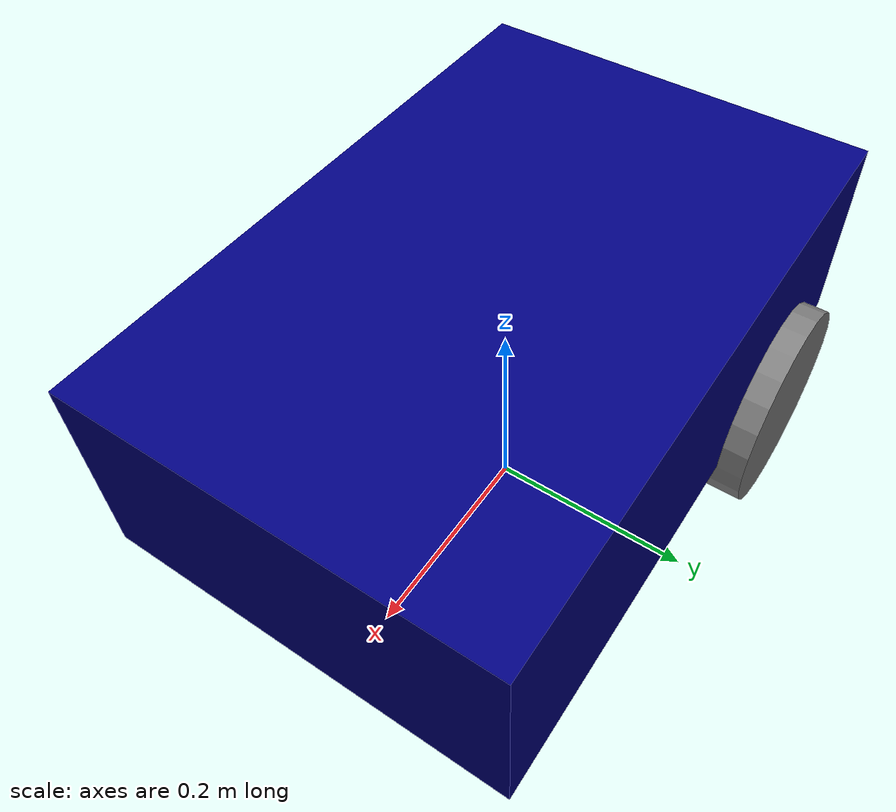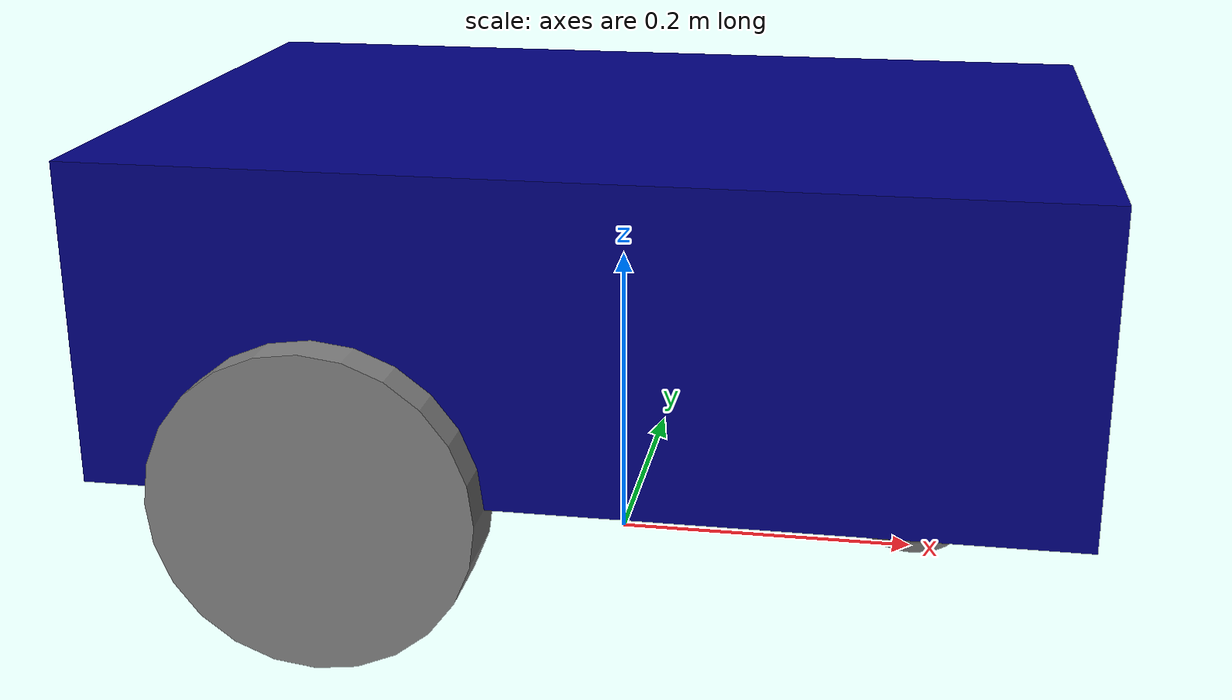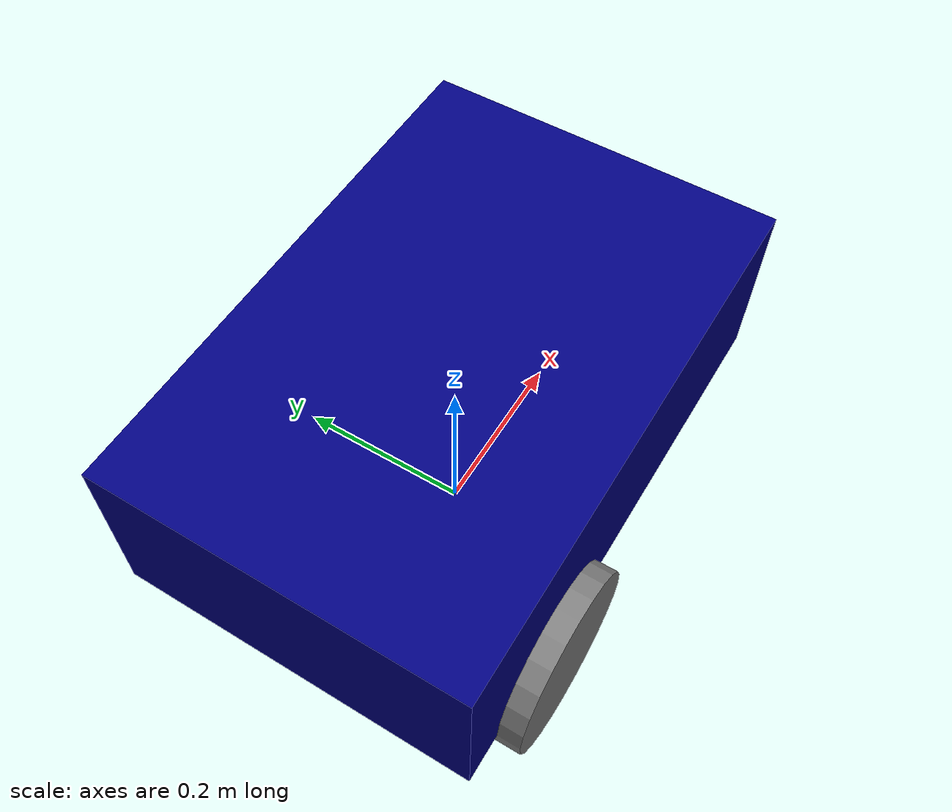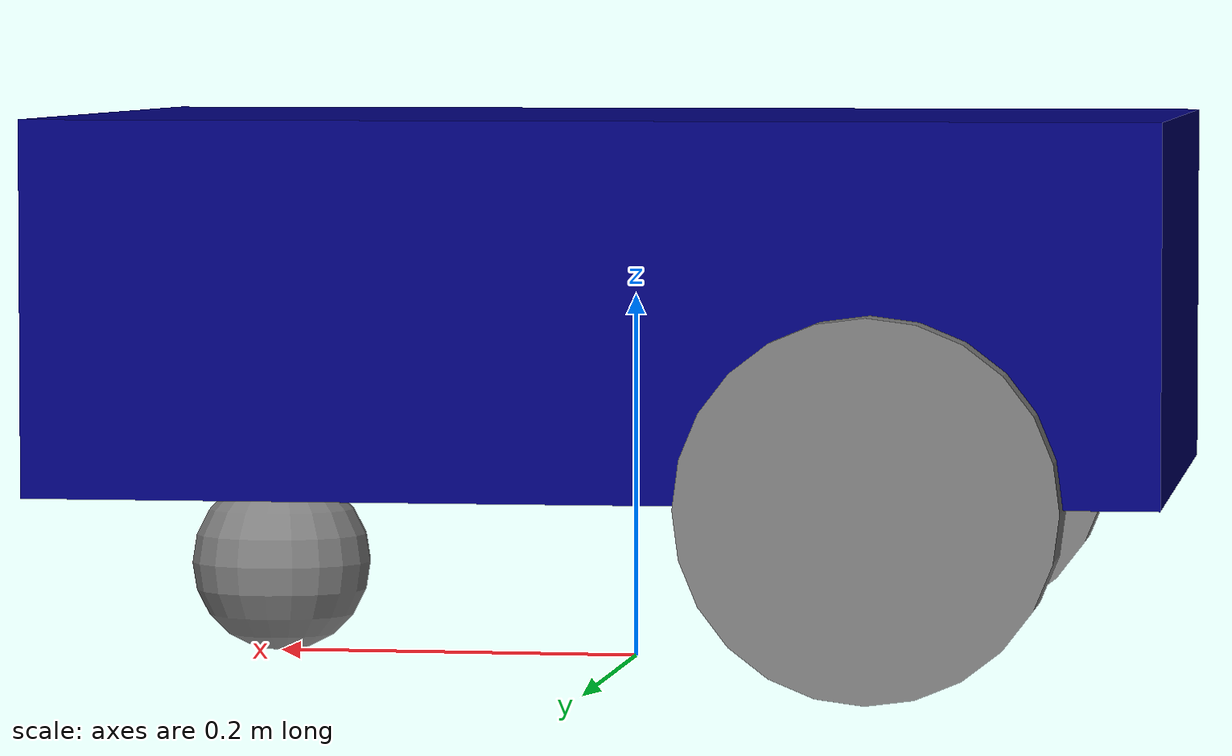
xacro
<?xml version="1.0"?>
<robot name="robot" xmlns:xacro="http://www.ros.org/wiki/xacro">
    <!--Defines a material that can be used to color a geometry-->

    <xacro:include filename="common_properties.xacro"/>

    <xacro:include filename="mobile_base.xacro"/>

    <xacro:include filename="mobile_base_gazebo.xacro" />

</robot>

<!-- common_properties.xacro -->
<robot xmlns:xacro="http://www.ros.org/wiki/xacro">

    <material name="blue">
        <color rgba="0 0 0.5 1" />
    </material>

    <material name="grey">
        <color rgba="0.5 0.5 0.5 1" />
    </material>

    <material name="red">
        <color rgba="0.5 0 0 1" />
    </material>

    <xacro:macro name="box_inertia" params="m l w h xyz rpy">
        <inertial>
            <origin xyz="${xyz}" rpy="${rpy}" />
            <mass value="${m}" />
            <inertia ixx="${(m/12) * (h*h + l*l)}" ixy="0" ixz="0"
                     iyy="${(m/12) * (w*w + l*l)}" iyz="0"
                     izz="${(m/12) * (w*w + h*h)}" />
        </inertial>
    </xacro:macro>

    <xacro:macro name="cylinder_inertia" params="m r h xyz rpy">
        <inertial>
            <origin xyz="${xyz}" rpy="${rpy}" />
            <mass value="${m}" />
            <inertia ixx="${(m/12) * (3*r*r + h*h)}" ixy="0" ixz="0"
                     iyy="${(m/12) * (3*r*r + h*h)}" iyz="0"
                     izz="${(m/2) * (r*r)}" />
        </inertial>
    </xacro:macro>

    <xacro:macro name="sphere_inertia" params="m r xyz rpy">
        <inertial>
            <origin xyz="${xyz}" rpy="${rpy}" />
            <mass value="${m}" />
            <inertia ixx="${(2/5) * m * r * r}" ixy="0" ixz="0"
                     iyy="${(2/5) * m * r * r}" iyz="0"
                     izz="${(2/5) * m * r * r}" />
        </inertial>
    </xacro:macro>

</robot>

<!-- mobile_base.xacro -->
<robot xmlns:xacro="http://www.ros.org/wiki/xacro">

    <xacro:property name="base_lenght" value="0.6"/>
    <xacro:property name="base_width" value="0.4"/>
    <xacro:property name="base_height" value="0.2"/>
    <xacro:property name="wheel_radius" value="0.1"/>
    <xacro:property name="wheel_length" value="0.05"/>

    <xacro:macro name="wheel_link" params="prefix">
        <link name="${prefix}_wheel_link">
            <visual>
                <origin xyz="0 0 0" rpy="${pi/2.0} 0 0"/>
                <geometry>
                    <cylinder radius="${wheel_radius}" length="${wheel_length}"/> <!-- in meters |  20cm radius | 20cm height -->
                </geometry>
                <material name="grey"/>
            </visual>
            <collision>
                <origin xyz="0 0 0" rpy="${pi/2.0} 0 0"/>
                <geometry>
                    <cylinder radius="${wheel_radius}" length="${wheel_length}"/> <!-- in meters |  20cm radius | 20cm height -->
                </geometry>
            </collision>
            <xacro:cylinder_inertia mass="1" radius="${wheel_radius}" height="${wheel_length}" xyz_origin="0 0 0" rpy_orgin="0 0 0"/>
        </link>
    </xacro:macro>

    <xacro:wheel_link prefix="right"/>
    <xacro:wheel_link prefix="left"/>

    <link name="base_footprint"/>

    <joint name="footprint_to_base_link_joint" type="fixed">
        <parent link="base_footprint"/>
        <child link="base_link"/>
        <origin xyz="0 0 ${wheel_radius}" rpy="0 0 0"/>
    </joint>

    <!-- Defines the geometry and link of the robot-->
    <link name="base_link"><!-- The base link is nessesary as a basic link object-->
        <visual>
            <!-- Places the robot on the default position -->
            <origin xyz="0 0 ${wheel_radius}" rpy="0 0 0"/> <!-- position of the box rpy toll pitch yaw-->
            <geometry>
                <box size="${base_lenght} ${base_width} ${base_height}"/> <!-- in meters |  60cm long | 40cm wide | 20 cm high -->
            </geometry>
            <material name="blue"/> <!-- color of the box -->
        </visual>
        <collision>
            <geometry>
                <box size="${base_lenght} ${base_width} ${base_height}"/> <!-- in meters |  60cm long | 40cm wide | 20 cm high -->
            </geometry>
            <origin xyz="0 0 ${wheel_radius}" rpy="0 0 0"/>
        </collision>
        <xacro:box_inertia mass="5.0" lenght="${base_lenght}" width="${base_width}" height="${base_height}" xyz_origin="0 0 ${wheel_radius}" rpy_orgin="0 0 0"/>
    </link>

    <joint name="base_right_wheel_joint" type="continuous">
        <parent link="base_link"/>
        <child link="right_wheel_link"/>
        <origin xyz="${-base_lenght/4.0} ${-base_width/2} 0" rpy="0 0 0"/>
        <axis xyz="0 1 0"/>
    </joint>

    <joint name="base_left_wheel_joint" type="continuous">
        <parent link="base_link"/>
        <child link="left_wheel_link"/>
        <origin xyz="${-base_lenght/4.0} ${base_width/2} 0" rpy="0 0 0"/>
        <axis xyz="0 1 0"/>
    </joint>

    <link name="caster_wheel_link">
        <visual>
            <origin xyz="0 0 0" rpy="0 0 0"/>
            <geometry>
                <sphere radius="${wheel_radius/2}"/> <!-- in meters |  20cm radius | 20cm height -->
            </geometry >
            <material name="grey"/>
        </visual>
        <xacro:sphere_inertia mass="0.5" radius="${wheel_radius/2}" xyz_origin="0 0 0" rpy_orgin="0 0 0"/>
        <collision>
            <origin xyz="0 0 0" rpy="0 0 0"/>
            <geometry>
                <sphere radius="${wheel_radius/2}"/> <!-- in meters |  20cm radius | 20cm height -->
            </geometry>
        </collision>
    </link>

    <joint name="base_caster_wheel_joint" type="continuous">
        <parent link="base_link"/>
        <child link="caster_wheel_link"/>
        <origin xyz="${base_lenght/3.0} 0 ${-wheel_radius/2}" rpy="0 0 0"/>
        <axis xyz="0 1 0"/>
    </joint>

    <gazebo reference="right_wheel_link">
        <mu1>0.9</mu1>
        <mu2>0.9</mu2>
    </gazebo>
    <gazebo reference="left_wheel_link">
        <mu1>0.9</mu1>
        <mu2>0.9</mu2>
    </gazebo>
    <gazebo reference="caster_wheel_link">
        <mu1>0.2</mu1>
        <mu2>0.2</mu2>
    </gazebo>
    <gazebo reference="base_link">
        <material>Gazebo/Blue</material>
    </gazebo>
    <gazebo reference="right_wheel_link">
        <material>Gazebo/Grey</material>
    </gazebo>
    <gazebo reference="left_wheel_link">
        <material>Gazebo/Grey</material>
    </gazebo>
    <gazebo reference="base_footprint">
        <material>Gazebo/Green</material>
    </gazebo>
    <gazebo reference="caster_wheel_link">
        <material>Gazebo/Grey</material>
    </gazebo>
</robot>
